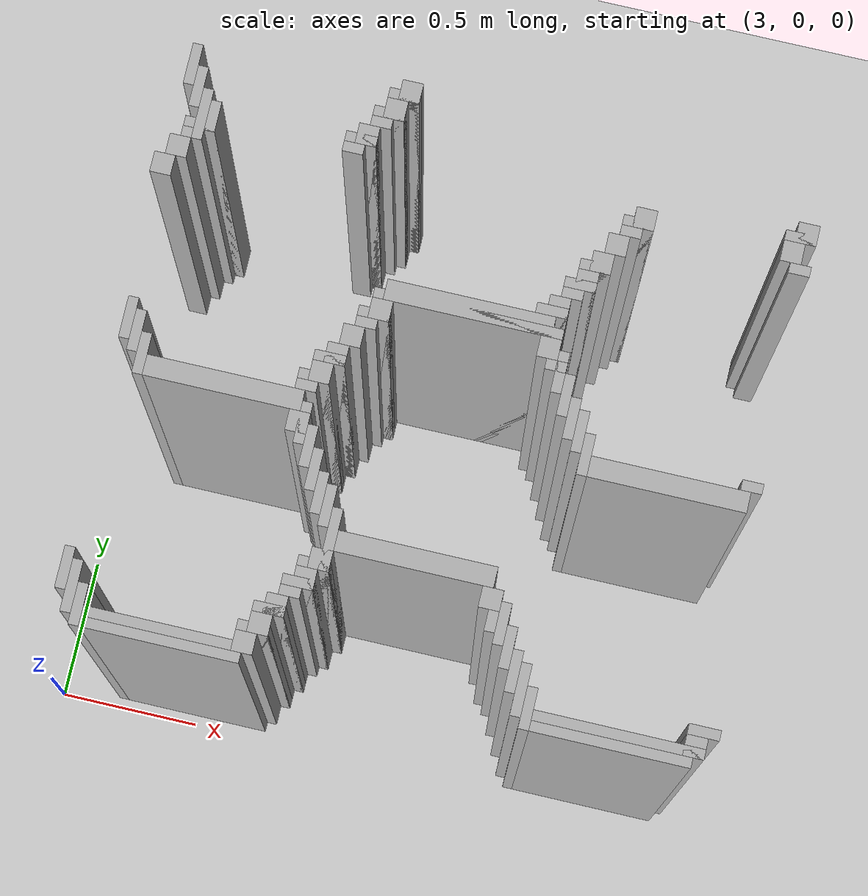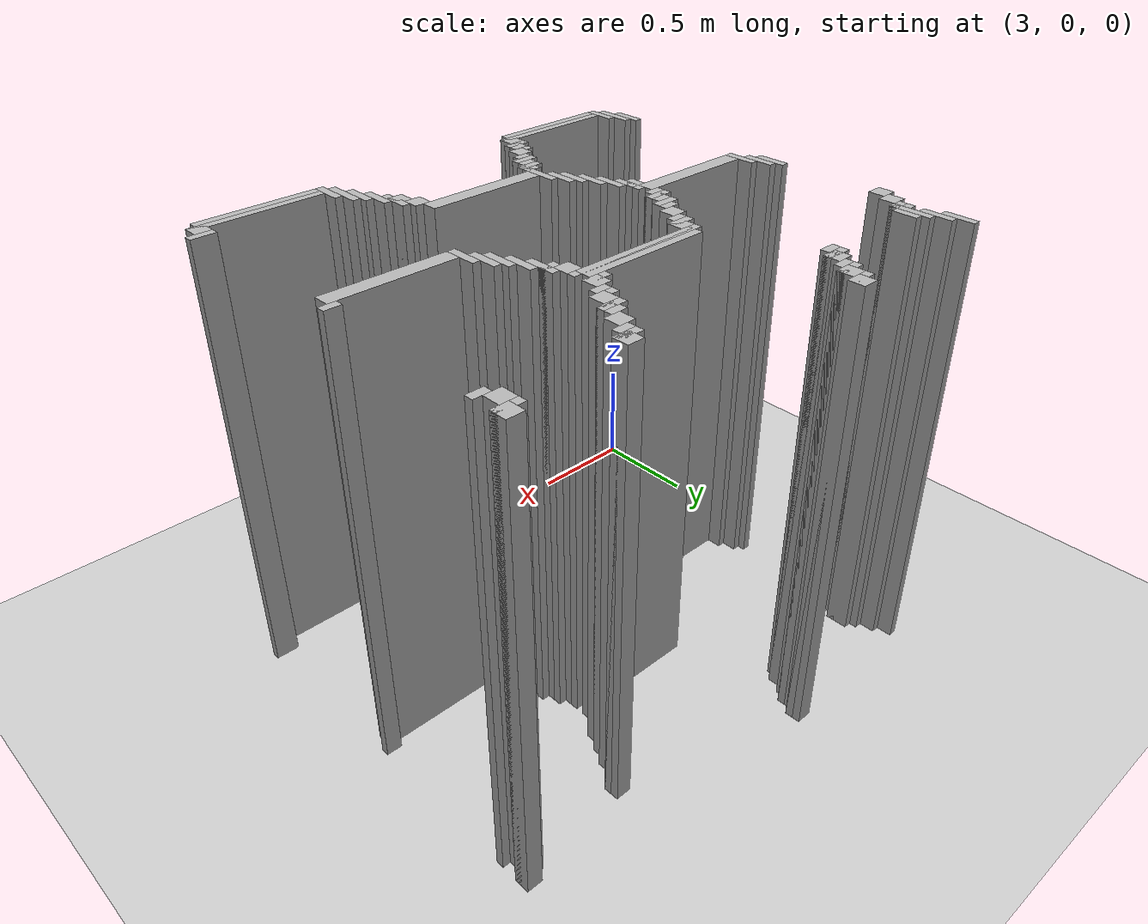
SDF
<sdf version="1.6">
 <world name="slam_world">
  <model name="ground_plane">
   <static>true</static>
   <link name="link">
    <collision name="collision">
     <geometry><plane><normal>0 0 1</normal><size>100 100</size></plane></geometry>
    </collision>
    <visual name="visual">
     <geometry><plane><normal>0 0 1</normal><size>100 100</size></plane></geometry>
     <material>
      <ambient>0.8 0.8 0.8 1</ambient>
      <diffuse>0.8 0.8 0.8 1</diffuse>
      <specular>0.8 0.8 0.8 1</specular>
     </material>
    </visual>
   </link>
  </model>
  <model name="wall_5062">
   <static>true</static>
   <pose>3.863109048723898 1.9837587006960555 1.0 0 0 0</pose>
   <link name="link">
    <collision name="collision">
     <geometry><box><size>0.06960556844547564 0.06960556844547564 2.0</size></box></geometry>
    </collision>
    <visual name="visual">
     <geometry><box><size>0.06960556844547564 0.06960556844547564 2.0</size></box></geometry>
     <material><ambient>0.5 0.5 0.5 1</ambient><diffuse>0.7 0.7 0.7 1</diffuse></material>
    </visual>
   </link>
  </model>
  <model name="wall_5074">
   <static>true</static>
   <pose>3.1496519721577725 1.91415313225058 1.0 0 0 0</pose>
   <link name="link">
    <collision name="collision">
     <geometry><box><size>0.03480278422273782 0.13921113689095127 2.0</size></box></geometry>
    </collision>
    <visual name="visual">
     <geometry><box><size>0.03480278422273782 0.13921113689095127 2.0</size></box></geometry>
     <material><ambient>0.5 0.5 0.5 1</ambient><diffuse>0.7 0.7 0.7 1</diffuse></material>
    </visual>
   </link>
  </model>
  <model name="wall_5075">
   <static>true</static>
   <pose>3.845707656612529 1.9663573085846866 1.0 0 0 0</pose>
   <link name="link">
    <collision name="collision">
     <geometry><box><size>0.10440835266821345 0.03480278422273782 2.0</size></box></geometry>
    </collision>
    <visual name="visual">
     <geometry><box><size>0.10440835266821345 0.03480278422273782 2.0</size></box></geometry>
     <material><ambient>0.5 0.5 0.5 1</ambient><diffuse>0.7 0.7 0.7 1</diffuse></material>
    </visual>
   </link>
  </model>
  <model name="wall_5086">
   <static>true</static>
   <pose>3.82830626450116 1.91415313225058 1.0 0 0 0</pose>
   <link name="link">
    <collision name="collision">
     <geometry><box><size>0.06960556844547564 0.06960556844547564 2.0</size></box></geometry>
    </collision>
    <visual name="visual">
     <geometry><box><size>0.06960556844547564 0.06960556844547564 2.0</size></box></geometry>
     <material><ambient>0.5 0.5 0.5 1</ambient><diffuse>0.7 0.7 0.7 1</diffuse></material>
    </visual>
   </link>
  </model>
  <model name="wall_5097">
   <static>true</static>
   <pose>3.1844547563805103 1.8445475638051043 1.0 0 0 0</pose>
   <link name="link">
    <collision name="collision">
     <geometry><box><size>0.03480278422273782 0.13921113689095127 2.0</size></box></geometry>
    </collision>
    <visual name="visual">
     <geometry><box><size>0.03480278422273782 0.13921113689095127 2.0</size></box></geometry>
     <material><ambient>0.5 0.5 0.5 1</ambient><diffuse>0.7 0.7 0.7 1</diffuse></material>
    </visual>
   </link>
  </model>
  <model name="wall_5098">
   <static>true</static>
   <pose>3.810904872389791 1.896751740139211 1.0 0 0 0</pose>
   <link name="link">
    <collision name="collision">
     <geometry><box><size>0.10440835266821345 0.03480278422273782 2.0</size></box></geometry>
    </collision>
    <visual name="visual">
     <geometry><box><size>0.10440835266821345 0.03480278422273782 2.0</size></box></geometry>
     <material><ambient>0.5 0.5 0.5 1</ambient><diffuse>0.7 0.7 0.7 1</diffuse></material>
    </visual>
   </link>
  </model>
  <model name="wall_5108">
   <static>true</static>
   <pose>3.793503480278422 1.8619489559164732 1.0 0 0 0</pose>
   <link name="link">
    <collision name="collision">
     <geometry><box><size>0.06960556844547564 0.03480278422273782 2.0</size></box></geometry>
    </collision>
    <visual name="visual">
     <geometry><box><size>0.06960556844547564 0.03480278422273782 2.0</size></box></geometry>
     <material><ambient>0.5 0.5 0.5 1</ambient><diffuse>0.7 0.7 0.7 1</diffuse></material>
    </visual>
   </link>
  </model>
  <model name="wall_5116">
   <static>true</static>
   <pose>3.219257540603248 1.75754060324826 1.0 0 0 0</pose>
   <link name="link">
    <collision name="collision">
     <geometry><box><size>0.03480278422273782 0.17401392111368907 2.0</size></box></geometry>
    </collision>
    <visual name="visual">
     <geometry><box><size>0.03480278422273782 0.17401392111368907 2.0</size></box></geometry>
     <material><ambient>0.5 0.5 0.5 1</ambient><diffuse>0.7 0.7 0.7 1</diffuse></material>
    </visual>
   </link>
  </model>
  <model name="wall_5117">
   <static>true</static>
   <pose>3.7587006960556844 1.8097447795823665 1.0 0 0 0</pose>
   <link name="link">
    <collision name="collision">
     <geometry><box><size>0.06960556844547564 0.06960556844547564 2.0</size></box></geometry>
    </collision>
    <visual name="visual">
     <geometry><box><size>0.06960556844547564 0.06960556844547564 2.0</size></box></geometry>
     <material><ambient>0.5 0.5 0.5 1</ambient><diffuse>0.7 0.7 0.7 1</diffuse></material>
    </visual>
   </link>
  </model>
  <model name="wall_5118">
   <static>true</static>
   <pose>5.220417633410673 1.8097447795823665 1.0 0 0 0</pose>
   <link name="link">
    <collision name="collision">
     <geometry><box><size>0.06960556844547564 0.06960556844547564 2.0</size></box></geometry>
    </collision>
    <visual name="visual">
     <geometry><box><size>0.06960556844547564 0.06960556844547564 2.0</size></box></geometry>
     <material><ambient>0.5 0.5 0.5 1</ambient><diffuse>0.7 0.7 0.7 1</diffuse></material>
    </visual>
   </link>
  </model>
  <model name="wall_5129">
   <static>true</static>
   <pose>3.254060324825986 1.75754060324826 1.0 0 0 0</pose>
   <link name="link">
    <collision name="collision">
     <geometry><box><size>0.03480278422273782 0.10440835266821345 2.0</size></box></geometry>
    </collision>
    <visual name="visual">
     <geometry><box><size>0.03480278422273782 0.10440835266821345 2.0</size></box></geometry>
     <material><ambient>0.5 0.5 0.5 1</ambient><diffuse>0.7 0.7 0.7 1</diffuse></material>
    </visual>
   </link>
  </model>
  <model name="wall_5130">
   <static>true</static>
   <pose>3.741299303944315 1.7923433874709975 1.0 0 0 0</pose>
   <link name="link">
    <collision name="collision">
     <geometry><box><size>0.10440835266821345 0.03480278422273782 2.0</size></box></geometry>
    </collision>
    <visual name="visual">
     <geometry><box><size>0.10440835266821345 0.03480278422273782 2.0</size></box></geometry>
     <material><ambient>0.5 0.5 0.5 1</ambient><diffuse>0.7 0.7 0.7 1</diffuse></material>
    </visual>
   </link>
  </model>
  <model name="wall_5131">
   <static>true</static>
   <pose>5.203016241299304 1.7923433874709975 1.0 0 0 0</pose>
   <link name="link">
    <collision name="collision">
     <geometry><box><size>0.10440835266821345 0.03480278422273782 2.0</size></box></geometry>
    </collision>
    <visual name="visual">
     <geometry><box><size>0.10440835266821345 0.03480278422273782 2.0</size></box></geometry>
     <material><ambient>0.5 0.5 0.5 1</ambient><diffuse>0.7 0.7 0.7 1</diffuse></material>
    </visual>
   </link>
  </model>
  <model name="wall_5140">
   <static>true</static>
   <pose>3.7238979118329465 1.75754060324826 1.0 0 0 0</pose>
   <link name="link">
    <collision name="collision">
     <geometry><box><size>0.06960556844547564 0.03480278422273782 2.0</size></box></geometry>
    </collision>
    <visual name="visual">
     <geometry><box><size>0.06960556844547564 0.03480278422273782 2.0</size></box></geometry>
     <material><ambient>0.5 0.5 0.5 1</ambient><diffuse>0.7 0.7 0.7 1</diffuse></material>
    </visual>
   </link>
  </model>
  <model name="wall_5141">
   <static>true</static>
   <pose>4.698375870069605 1.740139211136891 1.0 0 0 0</pose>
   <link name="link">
    <collision name="collision">
     <geometry><box><size>0.06960556844547564 0.06960556844547564 2.0</size></box></geometry>
    </collision>
    <visual name="visual">
     <geometry><box><size>0.06960556844547564 0.06960556844547564 2.0</size></box></geometry>
     <material><ambient>0.5 0.5 0.5 1</ambient><diffuse>0.7 0.7 0.7 1</diffuse></material>
    </visual>
   </link>
  </model>
  <model name="wall_5142">
   <static>true</static>
   <pose>5.185614849187935 1.740139211136891 1.0 0 0 0</pose>
   <link name="link">
    <collision name="collision">
     <geometry><box><size>0.06960556844547564 0.06960556844547564 2.0</size></box></geometry>
    </collision>
    <visual name="visual">
     <geometry><box><size>0.06960556844547564 0.06960556844547564 2.0</size></box></geometry>
     <material><ambient>0.5 0.5 0.5 1</ambient><diffuse>0.7 0.7 0.7 1</diffuse></material>
    </visual>
   </link>
  </model>
  <model name="wall_5151">
   <static>true</static>
   <pose>3.219257540603248 1.722737819025522 1.0 0 0 0</pose>
   <link name="link">
    <collision name="collision">
     <geometry><box><size>0.10440835266821345 0.03480278422273782 2.0</size></box></geometry>
    </collision>
    <visual name="visual">
     <geometry><box><size>0.10440835266821345 0.03480278422273782 2.0</size></box></geometry>
     <material><ambient>0.5 0.5 0.5 1</ambient><diffuse>0.7 0.7 0.7 1</diffuse></material>
    </visual>
   </link>
  </model>
  <model name="wall_5152">
   <static>true</static>
   <pose>4.6809744779582365 1.722737819025522 1.0 0 0 0</pose>
   <link name="link">
    <collision name="collision">
     <geometry><box><size>0.10440835266821345 0.03480278422273782 2.0</size></box></geometry>
    </collision>
    <visual name="visual">
     <geometry><box><size>0.10440835266821345 0.03480278422273782 2.0</size></box></geometry>
     <material><ambient>0.5 0.5 0.5 1</ambient><diffuse>0.7 0.7 0.7 1</diffuse></material>
    </visual>
   </link>
  </model>
  <model name="wall_5165">
   <static>true</static>
   <pose>3.201856148491879 1.6879350348027842 1.0 0 0 0</pose>
   <link name="link">
    <collision name="collision">
     <geometry><box><size>0.06960556844547564 0.03480278422273782 2.0</size></box></geometry>
    </collision>
    <visual name="visual">
     <geometry><box><size>0.06960556844547564 0.03480278422273782 2.0</size></box></geometry>
     <material><ambient>0.5 0.5 0.5 1</ambient><diffuse>0.7 0.7 0.7 1</diffuse></material>
    </visual>
   </link>
  </model>
  <model name="wall_5166">
   <static>true</static>
   <pose>4.663573085846868 1.6879350348027842 1.0 0 0 0</pose>
   <link name="link">
    <collision name="collision">
     <geometry><box><size>0.06960556844547564 0.03480278422273782 2.0</size></box></geometry>
    </collision>
    <visual name="visual">
     <geometry><box><size>0.06960556844547564 0.03480278422273782 2.0</size></box></geometry>
     <material><ambient>0.5 0.5 0.5 1</ambient><diffuse>0.7 0.7 0.7 1</diffuse></material>
    </visual>
   </link>
  </model>
  <model name="wall_5167">
   <static>true</static>
   <pose>5.220417633410673 1.6879350348027842 1.0 0 0 0</pose>
   <link name="link">
    <collision name="collision">
     <geometry><box><size>0.06960556844547564 0.03480278422273782 2.0</size></box></geometry>
    </collision>
    <visual name="visual">
     <geometry><box><size>0.06960556844547564 0.03480278422273782 2.0</size></box></geometry>
     <material><ambient>0.5 0.5 0.5 1</ambient><diffuse>0.7 0.7 0.7 1</diffuse></material>
    </visual>
   </link>
  </model>
  <model name="wall_5181">
   <static>true</static>
   <pose>3.167053364269141 1.6357308584686774 1.0 0 0 0</pose>
   <link name="link">
    <collision name="collision">
     <geometry><box><size>0.06960556844547564 0.06960556844547564 2.0</size></box></geometry>
    </collision>
    <visual name="visual">
     <geometry><box><size>0.06960556844547564 0.06960556844547564 2.0</size></box></geometry>
     <material><ambient>0.5 0.5 0.5 1</ambient><diffuse>0.7 0.7 0.7 1</diffuse></material>
    </visual>
   </link>
  </model>
  <model name="wall_5182">
   <static>true</static>
   <pose>4.6287703016241295 1.6357308584686774 1.0 0 0 0</pose>
   <link name="link">
    <collision name="collision">
     <geometry><box><size>0.06960556844547564 0.06960556844547564 2.0</size></box></geometry>
    </collision>
    <visual name="visual">
     <geometry><box><size>0.06960556844547564 0.06960556844547564 2.0</size></box></geometry>
     <material><ambient>0.5 0.5 0.5 1</ambient><diffuse>0.7 0.7 0.7 1</diffuse></material>
    </visual>
   </link>
  </model>
  <model name="wall_5197">
   <static>true</static>
   <pose>3.1322505800464038 1.5661252900232019 1.0 0 0 0</pose>
   <link name="link">
    <collision name="collision">
     <geometry><box><size>0.06960556844547564 0.06960556844547564 2.0</size></box></geometry>
    </collision>
    <visual name="visual">
     <geometry><box><size>0.06960556844547564 0.06960556844547564 2.0</size></box></geometry>
     <material><ambient>0.5 0.5 0.5 1</ambient><diffuse>0.7 0.7 0.7 1</diffuse></material>
    </visual>
   </link>
  </model>
  <model name="wall_5198">
   <static>true</static>
   <pose>4.593967517401392 1.5661252900232019 1.0 0 0 0</pose>
   <link name="link">
    <collision name="collision">
     <geometry><box><size>0.06960556844547564 0.06960556844547564 2.0</size></box></geometry>
    </collision>
    <visual name="visual">
     <geometry><box><size>0.06960556844547564 0.06960556844547564 2.0</size></box></geometry>
     <material><ambient>0.5 0.5 0.5 1</ambient><diffuse>0.7 0.7 0.7 1</diffuse></material>
    </visual>
   </link>
  </model>
  <model name="wall_5214">
   <static>true</static>
   <pose>4.576566125290023 1.548723897911833 1.0 0 0 0</pose>
   <link name="link">
    <collision name="collision">
     <geometry><box><size>0.10440835266821345 0.03480278422273782 2.0</size></box></geometry>
    </collision>
    <visual name="visual">
     <geometry><box><size>0.10440835266821345 0.03480278422273782 2.0</size></box></geometry>
     <material><ambient>0.5 0.5 0.5 1</ambient><diffuse>0.7 0.7 0.7 1</diffuse></material>
    </visual>
   </link>
  </model>
  <model name="wall_5230">
   <static>true</static>
   <pose>4.559164733178654 1.4965197215777262 1.0 0 0 0</pose>
   <link name="link">
    <collision name="collision">
     <geometry><box><size>0.06960556844547564 0.06960556844547564 2.0</size></box></geometry>
    </collision>
    <visual name="visual">
     <geometry><box><size>0.06960556844547564 0.06960556844547564 2.0</size></box></geometry>
     <material><ambient>0.5 0.5 0.5 1</ambient><diffuse>0.7 0.7 0.7 1</diffuse></material>
    </visual>
   </link>
  </model>
  <model name="wall_5243">
   <static>true</static>
   <pose>4.541763341067285 1.4791183294663572 1.0 0 0 0</pose>
   <link name="link">
    <collision name="collision">
     <geometry><box><size>0.10440835266821345 0.03480278422273782 2.0</size></box></geometry>
    </collision>
    <visual name="visual">
     <geometry><box><size>0.10440835266821345 0.03480278422273782 2.0</size></box></geometry>
     <material><ambient>0.5 0.5 0.5 1</ambient><diffuse>0.7 0.7 0.7 1</diffuse></material>
    </visual>
   </link>
  </model>
  <model name="wall_5258">
   <static>true</static>
   <pose>4.524361948955916 1.4443155452436194 1.0 0 0 0</pose>
   <link name="link">
    <collision name="collision">
     <geometry><box><size>0.06960556844547564 0.03480278422273782 2.0</size></box></geometry>
    </collision>
    <visual name="visual">
     <geometry><box><size>0.06960556844547564 0.03480278422273782 2.0</size></box></geometry>
     <material><ambient>0.5 0.5 0.5 1</ambient><diffuse>0.7 0.7 0.7 1</diffuse></material>
    </visual>
   </link>
  </model>
  <model name="wall_5269">
   <static>true</static>
   <pose>4.489559164733178 1.3921113689095126 1.0 0 0 0</pose>
   <link name="link">
    <collision name="collision">
     <geometry><box><size>0.06960556844547564 0.06960556844547564 2.0</size></box></geometry>
    </collision>
    <visual name="visual">
     <geometry><box><size>0.06960556844547564 0.06960556844547564 2.0</size></box></geometry>
     <material><ambient>0.5 0.5 0.5 1</ambient><diffuse>0.7 0.7 0.7 1</diffuse></material>
    </visual>
   </link>
  </model>
  <model name="wall_5283">
   <static>true</static>
   <pose>4.472157772621809 1.3747099767981439 1.0 0 0 0</pose>
   <link name="link">
    <collision name="collision">
     <geometry><box><size>0.10440835266821345 0.03480278422273782 2.0</size></box></geometry>
    </collision>
    <visual name="visual">
     <geometry><box><size>0.10440835266821345 0.03480278422273782 2.0</size></box></geometry>
     <material><ambient>0.5 0.5 0.5 1</ambient><diffuse>0.7 0.7 0.7 1</diffuse></material>
    </visual>
   </link>
  </model>
  <model name="wall_5297">
   <static>true</static>
   <pose>4.211136890951276 1.322505800464037 1.0 0 0 0</pose>
   <link name="link">
    <collision name="collision">
     <geometry><box><size>0.5568445475638051 0.06960556844547564 2.0</size></box></geometry>
    </collision>
    <visual name="visual">
     <geometry><box><size>0.5568445475638051 0.06960556844547564 2.0</size></box></geometry>
     <material><ambient>0.5 0.5 0.5 1</ambient><diffuse>0.7 0.7 0.7 1</diffuse></material>
    </visual>
   </link>
  </model>
  <model name="wall_5309">
   <static>true</static>
   <pose>4.211136890951276 1.3051044083526682 1.0 0 0 0</pose>
   <link name="link">
    <collision name="collision">
     <geometry><box><size>0.6264501160092807 0.03480278422273782 2.0</size></box></geometry>
    </collision>
    <visual name="visual">
     <geometry><box><size>0.6264501160092807 0.03480278422273782 2.0</size></box></geometry>
     <material><ambient>0.5 0.5 0.5 1</ambient><diffuse>0.7 0.7 0.7 1</diffuse></material>
    </visual>
   </link>
  </model>
  <model name="wall_5320">
   <static>true</static>
   <pose>3.932714617169373 1.2529002320185614 1.0 0 0 0</pose>
   <link name="link">
    <collision name="collision">
     <geometry><box><size>0.06960556844547564 0.06960556844547564 2.0</size></box></geometry>
    </collision>
    <visual name="visual">
     <geometry><box><size>0.06960556844547564 0.06960556844547564 2.0</size></box></geometry>
     <material><ambient>0.5 0.5 0.5 1</ambient><diffuse>0.7 0.7 0.7 1</diffuse></material>
    </visual>
   </link>
  </model>
  <model name="wall_5321">
   <static>true</static>
   <pose>4.489559164733178 1.2529002320185614 1.0 0 0 0</pose>
   <link name="link">
    <collision name="collision">
     <geometry><box><size>0.06960556844547564 0.06960556844547564 2.0</size></box></geometry>
    </collision>
    <visual name="visual">
     <geometry><box><size>0.06960556844547564 0.06960556844547564 2.0</size></box></geometry>
     <material><ambient>0.5 0.5 0.5 1</ambient><diffuse>0.7 0.7 0.7 1</diffuse></material>
    </visual>
   </link>
  </model>
  <model name="wall_5334">
   <static>true</static>
   <pose>3.9153132250580045 1.2354988399071924 1.0 0 0 0</pose>
   <link name="link">
    <collision name="collision">
     <geometry><box><size>0.10440835266821345 0.03480278422273782 2.0</size></box></geometry>
    </collision>
    <visual name="visual">
     <geometry><box><size>0.10440835266821345 0.03480278422273782 2.0</size></box></geometry>
     <material><ambient>0.5 0.5 0.5 1</ambient><diffuse>0.7 0.7 0.7 1</diffuse></material>
    </visual>
   </link>
  </model>
  <model name="wall_5335">
   <static>true</static>
   <pose>4.541763341067285 1.1832946635730859 1.0 0 0 0</pose>
   <link name="link">
    <collision name="collision">
     <geometry><box><size>0.03480278422273782 0.13921113689095127 2.0</size></box></geometry>
    </collision>
    <visual name="visual">
     <geometry><box><size>0.03480278422273782 0.13921113689095127 2.0</size></box></geometry>
     <material><ambient>0.5 0.5 0.5 1</ambient><diffuse>0.7 0.7 0.7 1</diffuse></material>
    </visual>
   </link>
  </model>
  <model name="wall_5345">
   <static>true</static>
   <pose>3.897911832946636 1.2006960556844548 1.0 0 0 0</pose>
   <link name="link">
    <collision name="collision">
     <geometry><box><size>0.06960556844547564 0.03480278422273782 2.0</size></box></geometry>
    </collision>
    <visual name="visual">
     <geometry><box><size>0.06960556844547564 0.03480278422273782 2.0</size></box></geometry>
     <material><ambient>0.5 0.5 0.5 1</ambient><diffuse>0.7 0.7 0.7 1</diffuse></material>
    </visual>
   </link>
  </model>
  <model name="wall_5346">
   <static>true</static>
   <pose>4.524361948955916 1.2006960556844548 1.0 0 0 0</pose>
   <link name="link">
    <collision name="collision">
     <geometry><box><size>0.06960556844547564 0.03480278422273782 2.0</size></box></geometry>
    </collision>
    <visual name="visual">
     <geometry><box><size>0.06960556844547564 0.03480278422273782 2.0</size></box></geometry>
     <material><ambient>0.5 0.5 0.5 1</ambient><diffuse>0.7 0.7 0.7 1</diffuse></material>
    </visual>
   </link>
  </model>
  <model name="wall_5357">
   <static>true</static>
   <pose>3.863109048723898 1.148491879350348 1.0 0 0 0</pose>
   <link name="link">
    <collision name="collision">
     <geometry><box><size>0.06960556844547564 0.06960556844547564 2.0</size></box></geometry>
    </collision>
    <visual name="visual">
     <geometry><box><size>0.06960556844547564 0.06960556844547564 2.0</size></box></geometry>
     <material><ambient>0.5 0.5 0.5 1</ambient><diffuse>0.7 0.7 0.7 1</diffuse></material>
    </visual>
   </link>
  </model>
  <model name="wall_5358">
   <static>true</static>
   <pose>4.576566125290023 1.1136890951276102 1.0 0 0 0</pose>
   <link name="link">
    <collision name="collision">
     <geometry><box><size>0.03480278422273782 0.13921113689095127 2.0</size></box></geometry>
    </collision>
    <visual name="visual">
     <geometry><box><size>0.03480278422273782 0.13921113689095127 2.0</size></box></geometry>
     <material><ambient>0.5 0.5 0.5 1</ambient><diffuse>0.7 0.7 0.7 1</diffuse></material>
    </visual>
   </link>
  </model>
  <model name="wall_5370">
   <static>true</static>
   <pose>3.1496519721577725 1.0440835266821344 1.0 0 0 0</pose>
   <link name="link">
    <collision name="collision">
     <geometry><box><size>0.03480278422273782 0.13921113689095127 2.0</size></box></geometry>
    </collision>
    <visual name="visual">
     <geometry><box><size>0.03480278422273782 0.13921113689095127 2.0</size></box></geometry>
     <material><ambient>0.5 0.5 0.5 1</ambient><diffuse>0.7 0.7 0.7 1</diffuse></material>
    </visual>
   </link>
  </model>
  <model name="wall_5371">
   <static>true</static>
   <pose>3.82830626450116 1.0788863109048723 1.0 0 0 0</pose>
   <link name="link">
    <collision name="collision">
     <geometry><box><size>0.06960556844547564 0.06960556844547564 2.0</size></box></geometry>
    </collision>
    <visual name="visual">
     <geometry><box><size>0.06960556844547564 0.06960556844547564 2.0</size></box></geometry>
     <material><ambient>0.5 0.5 0.5 1</ambient><diffuse>0.7 0.7 0.7 1</diffuse></material>
    </visual>
   </link>
  </model>
  <model name="wall_5372">
   <static>true</static>
   <pose>4.611368909512761 1.0440835266821344 1.0 0 0 0</pose>
   <link name="link">
    <collision name="collision">
     <geometry><box><size>0.03480278422273782 0.13921113689095127 2.0</size></box></geometry>
    </collision>
    <visual name="visual">
     <geometry><box><size>0.03480278422273782 0.13921113689095127 2.0</size></box></geometry>
     <material><ambient>0.5 0.5 0.5 1</ambient><diffuse>0.7 0.7 0.7 1</diffuse></material>
    </visual>
   </link>
  </model>
  <model name="wall_5384">
   <static>true</static>
   <pose>3.1844547563805103 1.0092807424593968 1.0 0 0 0</pose>
   <link name="link">
    <collision name="collision">
     <geometry><box><size>0.03480278422273782 0.13921113689095127 2.0</size></box></geometry>
    </collision>
    <visual name="visual">
     <geometry><box><size>0.03480278422273782 0.13921113689095127 2.0</size></box></geometry>
     <material><ambient>0.5 0.5 0.5 1</ambient><diffuse>0.7 0.7 0.7 1</diffuse></material>
    </visual>
   </link>
  </model>
  <model name="wall_5385">
   <static>true</static>
   <pose>3.810904872389791 1.0614849187935034 1.0 0 0 0</pose>
   <link name="link">
    <collision name="collision">
     <geometry><box><size>0.10440835266821345 0.03480278422273782 2.0</size></box></geometry>
    </collision>
    <visual name="visual">
     <geometry><box><size>0.10440835266821345 0.03480278422273782 2.0</size></box></geometry>
     <material><ambient>0.5 0.5 0.5 1</ambient><diffuse>0.7 0.7 0.7 1</diffuse></material>
    </visual>
   </link>
  </model>
  <model name="wall_5386">
   <static>true</static>
   <pose>4.646171693735498 1.0092807424593968 1.0 0 0 0</pose>
   <link name="link">
    <collision name="collision">
     <geometry><box><size>0.03480278422273782 0.13921113689095127 2.0</size></box></geometry>
    </collision>
    <visual name="visual">
     <geometry><box><size>0.03480278422273782 0.13921113689095127 2.0</size></box></geometry>
     <material><ambient>0.5 0.5 0.5 1</ambient><diffuse>0.7 0.7 0.7 1</diffuse></material>
    </visual>
   </link>
  </model>
  <model name="wall_5396">
   <static>true</static>
   <pose>3.793503480278422 1.0092807424593968 1.0 0 0 0</pose>
   <link name="link">
    <collision name="collision">
     <geometry><box><size>0.06960556844547564 0.06960556844547564 2.0</size></box></geometry>
    </collision>
    <visual name="visual">
     <geometry><box><size>0.06960556844547564 0.06960556844547564 2.0</size></box></geometry>
     <material><ambient>0.5 0.5 0.5 1</ambient><diffuse>0.7 0.7 0.7 1</diffuse></material>
    </visual>
   </link>
  </model>
  <model name="wall_5404">
   <static>true</static>
   <pose>3.219257540603248 0.9396751740139211 1.0 0 0 0</pose>
   <link name="link">
    <collision name="collision">
     <geometry><box><size>0.03480278422273782 0.13921113689095127 2.0</size></box></geometry>
    </collision>
    <visual name="visual">
     <geometry><box><size>0.03480278422273782 0.13921113689095127 2.0</size></box></geometry>
     <material><ambient>0.5 0.5 0.5 1</ambient><diffuse>0.7 0.7 0.7 1</diffuse></material>
    </visual>
   </link>
  </model>
  <model name="wall_5405">
   <static>true</static>
   <pose>3.776102088167053 0.9918793503480278 1.0 0 0 0</pose>
   <link name="link">
    <collision name="collision">
     <geometry><box><size>0.10440835266821345 0.03480278422273782 2.0</size></box></geometry>
    </collision>
    <visual name="visual">
     <geometry><box><size>0.10440835266821345 0.03480278422273782 2.0</size></box></geometry>
     <material><ambient>0.5 0.5 0.5 1</ambient><diffuse>0.7 0.7 0.7 1</diffuse></material>
    </visual>
   </link>
  </model>
  <model name="wall_5406">
   <static>true</static>
   <pose>4.6809744779582365 0.9396751740139211 1.0 0 0 0</pose>
   <link name="link">
    <collision name="collision">
     <geometry><box><size>0.03480278422273782 0.13921113689095127 2.0</size></box></geometry>
    </collision>
    <visual name="visual">
     <geometry><box><size>0.03480278422273782 0.13921113689095127 2.0</size></box></geometry>
     <material><ambient>0.5 0.5 0.5 1</ambient><diffuse>0.7 0.7 0.7 1</diffuse></material>
    </visual>
   </link>
  </model>
  <model name="wall_5416">
   <static>true</static>
   <pose>3.7587006960556844 0.95707656612529 1.0 0 0 0</pose>
   <link name="link">
    <collision name="collision">
     <geometry><box><size>0.06960556844547564 0.03480278422273782 2.0</size></box></geometry>
    </collision>
    <visual name="visual">
     <geometry><box><size>0.06960556844547564 0.03480278422273782 2.0</size></box></geometry>
     <material><ambient>0.5 0.5 0.5 1</ambient><diffuse>0.7 0.7 0.7 1</diffuse></material>
    </visual>
   </link>
  </model>
  <model name="wall_5417">
   <static>true</static>
   <pose>5.220417633410673 0.95707656612529 1.0 0 0 0</pose>
   <link name="link">
    <collision name="collision">
     <geometry><box><size>0.06960556844547564 0.03480278422273782 2.0</size></box></geometry>
    </collision>
    <visual name="visual">
     <geometry><box><size>0.06960556844547564 0.03480278422273782 2.0</size></box></geometry>
     <material><ambient>0.5 0.5 0.5 1</ambient><diffuse>0.7 0.7 0.7 1</diffuse></material>
    </visual>
   </link>
  </model>
  <model name="wall_5424">
   <static>true</static>
   <pose>3.4976798143851506 0.9048723897911832 1.0 0 0 0</pose>
   <link name="link">
    <collision name="collision">
     <geometry><box><size>0.5220417633410672 0.06960556844547564 2.0</size></box></geometry>
    </collision>
    <visual name="visual">
     <geometry><box><size>0.5220417633410672 0.06960556844547564 2.0</size></box></geometry>
     <material><ambient>0.5 0.5 0.5 1</ambient><diffuse>0.7 0.7 0.7 1</diffuse></material>
    </visual>
   </link>
  </model>
  <model name="wall_5425">
   <static>true</static>
   <pose>4.959396751740139 0.9048723897911832 1.0 0 0 0</pose>
   <link name="link">
    <collision name="collision">
     <geometry><box><size>0.5220417633410672 0.06960556844547564 2.0</size></box></geometry>
    </collision>
    <visual name="visual">
     <geometry><box><size>0.5220417633410672 0.06960556844547564 2.0</size></box></geometry>
     <material><ambient>0.5 0.5 0.5 1</ambient><diffuse>0.7 0.7 0.7 1</diffuse></material>
    </visual>
   </link>
  </model>
  <model name="wall_5439">
   <static>true</static>
   <pose>3.776102088167053 0.8352668213457076 1.0 0 0 0</pose>
   <link name="link">
    <collision name="collision">
     <geometry><box><size>0.03480278422273782 0.13921113689095127 2.0</size></box></geometry>
    </collision>
    <visual name="visual">
     <geometry><box><size>0.03480278422273782 0.13921113689095127 2.0</size></box></geometry>
     <material><ambient>0.5 0.5 0.5 1</ambient><diffuse>0.7 0.7 0.7 1</diffuse></material>
    </visual>
   </link>
  </model>
  <model name="wall_5449">
   <static>true</static>
   <pose>3.7587006960556844 0.8352668213457076 1.0 0 0 0</pose>
   <link name="link">
    <collision name="collision">
     <geometry><box><size>0.06960556844547564 0.06960556844547564 2.0</size></box></geometry>
    </collision>
    <visual name="visual">
     <geometry><box><size>0.06960556844547564 0.06960556844547564 2.0</size></box></geometry>
     <material><ambient>0.5 0.5 0.5 1</ambient><diffuse>0.7 0.7 0.7 1</diffuse></material>
    </visual>
   </link>
  </model>
  <model name="wall_5459">
   <static>true</static>
   <pose>3.810904872389791 0.765661252900232 1.0 0 0 0</pose>
   <link name="link">
    <collision name="collision">
     <geometry><box><size>0.03480278422273782 0.13921113689095127 2.0</size></box></geometry>
    </collision>
    <visual name="visual">
     <geometry><box><size>0.03480278422273782 0.13921113689095127 2.0</size></box></geometry>
     <material><ambient>0.5 0.5 0.5 1</ambient><diffuse>0.7 0.7 0.7 1</diffuse></material>
    </visual>
   </link>
  </model>
  <model name="wall_5475">
   <static>true</static>
   <pose>3.845707656612529 0.6960556844547563 1.0 0 0 0</pose>
   <link name="link">
    <collision name="collision">
     <geometry><box><size>0.03480278422273782 0.13921113689095127 2.0</size></box></geometry>
    </collision>
    <visual name="visual">
     <geometry><box><size>0.03480278422273782 0.13921113689095127 2.0</size></box></geometry>
     <material><ambient>0.5 0.5 0.5 1</ambient><diffuse>0.7 0.7 0.7 1</diffuse></material>
    </visual>
   </link>
  </model>
  <model name="wall_5485">
   <static>true</static>
   <pose>3.8805104408352666 0.6264501160092807 1.0 0 0 0</pose>
   <link name="link">
    <collision name="collision">
     <geometry><box><size>0.03480278422273782 0.13921113689095127 2.0</size></box></geometry>
    </collision>
    <visual name="visual">
     <geometry><box><size>0.03480278422273782 0.13921113689095127 2.0</size></box></geometry>
     <material><ambient>0.5 0.5 0.5 1</ambient><diffuse>0.7 0.7 0.7 1</diffuse></material>
    </visual>
   </link>
  </model>
  <model name="wall_5495">
   <static>true</static>
   <pose>3.9153132250580045 0.5916473317865429 1.0 0 0 0</pose>
   <link name="link">
    <collision name="collision">
     <geometry><box><size>0.03480278422273782 0.13921113689095127 2.0</size></box></geometry>
    </collision>
    <visual name="visual">
     <geometry><box><size>0.03480278422273782 0.13921113689095127 2.0</size></box></geometry>
     <material><ambient>0.5 0.5 0.5 1</ambient><diffuse>0.7 0.7 0.7 1</diffuse></material>
    </visual>
   </link>
  </model>
  <model name="wall_5511">
   <static>true</static>
   <pose>3.9501160092807424 0.4872389791183295 1.0 0 0 0</pose>
   <link name="link">
    <collision name="collision">
     <geometry><box><size>0.03480278422273782 0.2088167053364269 2.0</size></box></geometry>
    </collision>
    <visual name="visual">
     <geometry><box><size>0.03480278422273782 0.2088167053364269 2.0</size></box></geometry>
     <material><ambient>0.5 0.5 0.5 1</ambient><diffuse>0.7 0.7 0.7 1</diffuse></material>
    </visual>
   </link>
  </model>
  <model name="wall_5528">
   <static>true</static>
   <pose>4.228538283062645 0.4872389791183295 1.0 0 0 0</pose>
   <link name="link">
    <collision name="collision">
     <geometry><box><size>0.5220417633410672 0.06960556844547564 2.0</size></box></geometry>
    </collision>
    <visual name="visual">
     <geometry><box><size>0.5220417633410672 0.06960556844547564 2.0</size></box></geometry>
     <material><ambient>0.5 0.5 0.5 1</ambient><diffuse>0.7 0.7 0.7 1</diffuse></material>
    </visual>
   </link>
  </model>
  <model name="wall_5541">
   <static>true</static>
   <pose>3.932714617169373 0.4176334106728538 1.0 0 0 0</pose>
   <link name="link">
    <collision name="collision">
     <geometry><box><size>0.06960556844547564 0.06960556844547564 2.0</size></box></geometry>
    </collision>
    <visual name="visual">
     <geometry><box><size>0.06960556844547564 0.06960556844547564 2.0</size></box></geometry>
     <material><ambient>0.5 0.5 0.5 1</ambient><diffuse>0.7 0.7 0.7 1</diffuse></material>
    </visual>
   </link>
  </model>
  <model name="wall_5542">
   <static>true</static>
   <pose>4.489559164733178 0.4176334106728538 1.0 0 0 0</pose>
   <link name="link">
    <collision name="collision">
     <geometry><box><size>0.06960556844547564 0.06960556844547564 2.0</size></box></geometry>
    </collision>
    <visual name="visual">
     <geometry><box><size>0.06960556844547564 0.06960556844547564 2.0</size></box></geometry>
     <material><ambient>0.5 0.5 0.5 1</ambient><diffuse>0.7 0.7 0.7 1</diffuse></material>
    </visual>
   </link>
  </model>
  <model name="wall_5561">
   <static>true</static>
   <pose>3.9153132250580045 0.4002320185614849 1.0 0 0 0</pose>
   <link name="link">
    <collision name="collision">
     <geometry><box><size>0.10440835266821345 0.03480278422273782 2.0</size></box></geometry>
    </collision>
    <visual name="visual">
     <geometry><box><size>0.10440835266821345 0.03480278422273782 2.0</size></box></geometry>
     <material><ambient>0.5 0.5 0.5 1</ambient><diffuse>0.7 0.7 0.7 1</diffuse></material>
    </visual>
   </link>
  </model>
  <model name="wall_5562">
   <static>true</static>
   <pose>4.541763341067285 0.34802784222737815 1.0 0 0 0</pose>
   <link name="link">
    <collision name="collision">
     <geometry><box><size>0.03480278422273782 0.13921113689095127 2.0</size></box></geometry>
    </collision>
    <visual name="visual">
     <geometry><box><size>0.03480278422273782 0.13921113689095127 2.0</size></box></geometry>
     <material><ambient>0.5 0.5 0.5 1</ambient><diffuse>0.7 0.7 0.7 1</diffuse></material>
    </visual>
   </link>
  </model>
  <model name="wall_5581">
   <static>true</static>
   <pose>3.897911832946636 0.34802784222737815 1.0 0 0 0</pose>
   <link name="link">
    <collision name="collision">
     <geometry><box><size>0.06960556844547564 0.06960556844547564 2.0</size></box></geometry>
    </collision>
    <visual name="visual">
     <geometry><box><size>0.06960556844547564 0.06960556844547564 2.0</size></box></geometry>
     <material><ambient>0.5 0.5 0.5 1</ambient><diffuse>0.7 0.7 0.7 1</diffuse></material>
    </visual>
   </link>
  </model>
  <model name="wall_5582">
   <static>true</static>
   <pose>4.524361948955916 0.34802784222737815 1.0 0 0 0</pose>
   <link name="link">
    <collision name="collision">
     <geometry><box><size>0.06960556844547564 0.06960556844547564 2.0</size></box></geometry>
    </collision>
    <visual name="visual">
     <geometry><box><size>0.06960556844547564 0.06960556844547564 2.0</size></box></geometry>
     <material><ambient>0.5 0.5 0.5 1</ambient><diffuse>0.7 0.7 0.7 1</diffuse></material>
    </visual>
   </link>
  </model>
  <model name="wall_5601">
   <static>true</static>
   <pose>3.8805104408352666 0.3306264501160093 1.0 0 0 0</pose>
   <link name="link">
    <collision name="collision">
     <geometry><box><size>0.10440835266821345 0.03480278422273782 2.0</size></box></geometry>
    </collision>
    <visual name="visual">
     <geometry><box><size>0.10440835266821345 0.03480278422273782 2.0</size></box></geometry>
     <material><ambient>0.5 0.5 0.5 1</ambient><diffuse>0.7 0.7 0.7 1</diffuse></material>
    </visual>
   </link>
  </model>
  <model name="wall_5602">
   <static>true</static>
   <pose>4.576566125290023 0.27842227378190254 1.0 0 0 0</pose>
   <link name="link">
    <collision name="collision">
     <geometry><box><size>0.03480278422273782 0.13921113689095127 2.0</size></box></geometry>
    </collision>
    <visual name="visual">
     <geometry><box><size>0.03480278422273782 0.13921113689095127 2.0</size></box></geometry>
     <material><ambient>0.5 0.5 0.5 1</ambient><diffuse>0.7 0.7 0.7 1</diffuse></material>
    </visual>
   </link>
  </model>
  <model name="wall_5618">
   <static>true</static>
   <pose>3.863109048723898 0.29582366589327147 1.0 0 0 0</pose>
   <link name="link">
    <collision name="collision">
     <geometry><box><size>0.06960556844547564 0.03480278422273782 2.0</size></box></geometry>
    </collision>
    <visual name="visual">
     <geometry><box><size>0.06960556844547564 0.03480278422273782 2.0</size></box></geometry>
     <material><ambient>0.5 0.5 0.5 1</ambient><diffuse>0.7 0.7 0.7 1</diffuse></material>
    </visual>
   </link>
  </model>
  <model name="wall_5630">
   <static>true</static>
   <pose>3.1496519721577725 0.2088167053364269 1.0 0 0 0</pose>
   <link name="link">
    <collision name="collision">
     <geometry><box><size>0.03480278422273782 0.13921113689095127 2.0</size></box></geometry>
    </collision>
    <visual name="visual">
     <geometry><box><size>0.03480278422273782 0.13921113689095127 2.0</size></box></geometry>
     <material><ambient>0.5 0.5 0.5 1</ambient><diffuse>0.7 0.7 0.7 1</diffuse></material>
    </visual>
   </link>
  </model>
  <model name="wall_5631">
   <static>true</static>
   <pose>3.82830626450116 0.24361948955916474 1.0 0 0 0</pose>
   <link name="link">
    <collision name="collision">
     <geometry><box><size>0.06960556844547564 0.06960556844547564 2.0</size></box></geometry>
    </collision>
    <visual name="visual">
     <geometry><box><size>0.06960556844547564 0.06960556844547564 2.0</size></box></geometry>
     <material><ambient>0.5 0.5 0.5 1</ambient><diffuse>0.7 0.7 0.7 1</diffuse></material>
    </visual>
   </link>
  </model>
  <model name="wall_5632">
   <static>true</static>
   <pose>4.611368909512761 0.2088167053364269 1.0 0 0 0</pose>
   <link name="link">
    <collision name="collision">
     <geometry><box><size>0.03480278422273782 0.13921113689095127 2.0</size></box></geometry>
    </collision>
    <visual name="visual">
     <geometry><box><size>0.03480278422273782 0.13921113689095127 2.0</size></box></geometry>
     <material><ambient>0.5 0.5 0.5 1</ambient><diffuse>0.7 0.7 0.7 1</diffuse></material>
    </visual>
   </link>
  </model>
  <model name="wall_5650">
   <static>true</static>
   <pose>3.1844547563805103 0.15661252900232017 1.0 0 0 0</pose>
   <link name="link">
    <collision name="collision">
     <geometry><box><size>0.03480278422273782 0.17401392111368907 2.0</size></box></geometry>
    </collision>
    <visual name="visual">
     <geometry><box><size>0.03480278422273782 0.17401392111368907 2.0</size></box></geometry>
     <material><ambient>0.5 0.5 0.5 1</ambient><diffuse>0.7 0.7 0.7 1</diffuse></material>
    </visual>
   </link>
  </model>
  <model name="wall_5651">
   <static>true</static>
   <pose>3.810904872389791 0.2262180974477958 1.0 0 0 0</pose>
   <link name="link">
    <collision name="collision">
     <geometry><box><size>0.10440835266821345 0.03480278422273782 2.0</size></box></geometry>
    </collision>
    <visual name="visual">
     <geometry><box><size>0.10440835266821345 0.03480278422273782 2.0</size></box></geometry>
     <material><ambient>0.5 0.5 0.5 1</ambient><diffuse>0.7 0.7 0.7 1</diffuse></material>
    </visual>
   </link>
  </model>
  <model name="wall_5652">
   <static>true</static>
   <pose>4.646171693735498 0.15661252900232017 1.0 0 0 0</pose>
   <link name="link">
    <collision name="collision">
     <geometry><box><size>0.03480278422273782 0.17401392111368907 2.0</size></box></geometry>
    </collision>
    <visual name="visual">
     <geometry><box><size>0.03480278422273782 0.17401392111368907 2.0</size></box></geometry>
     <material><ambient>0.5 0.5 0.5 1</ambient><diffuse>0.7 0.7 0.7 1</diffuse></material>
    </visual>
   </link>
  </model>
  <model name="wall_5668">
   <static>true</static>
   <pose>3.793503480278422 0.17401392111368907 1.0 0 0 0</pose>
   <link name="link">
    <collision name="collision">
     <geometry><box><size>0.06960556844547564 0.06960556844547564 2.0</size></box></geometry>
    </collision>
    <visual name="visual">
     <geometry><box><size>0.06960556844547564 0.06960556844547564 2.0</size></box></geometry>
     <material><ambient>0.5 0.5 0.5 1</ambient><diffuse>0.7 0.7 0.7 1</diffuse></material>
    </visual>
   </link>
  </model>
  <model name="wall_5680">
   <static>true</static>
   <pose>3.219257540603248 0.10440835266821345 1.0 0 0 0</pose>
   <link name="link">
    <collision name="collision">
     <geometry><box><size>0.03480278422273782 0.13921113689095127 2.0</size></box></geometry>
    </collision>
    <visual name="visual">
     <geometry><box><size>0.03480278422273782 0.13921113689095127 2.0</size></box></geometry>
     <material><ambient>0.5 0.5 0.5 1</ambient><diffuse>0.7 0.7 0.7 1</diffuse></material>
    </visual>
   </link>
  </model>
  <model name="wall_5681">
   <static>true</static>
   <pose>3.776102088167053 0.15661252900232017 1.0 0 0 0</pose>
   <link name="link">
    <collision name="collision">
     <geometry><box><size>0.10440835266821345 0.03480278422273782 2.0</size></box></geometry>
    </collision>
    <visual name="visual">
     <geometry><box><size>0.10440835266821345 0.03480278422273782 2.0</size></box></geometry>
     <material><ambient>0.5 0.5 0.5 1</ambient><diffuse>0.7 0.7 0.7 1</diffuse></material>
    </visual>
   </link>
  </model>
  <model name="wall_5682">
   <static>true</static>
   <pose>4.6809744779582365 0.10440835266821345 1.0 0 0 0</pose>
   <link name="link">
    <collision name="collision">
     <geometry><box><size>0.03480278422273782 0.13921113689095127 2.0</size></box></geometry>
    </collision>
    <visual name="visual">
     <geometry><box><size>0.03480278422273782 0.13921113689095127 2.0</size></box></geometry>
     <material><ambient>0.5 0.5 0.5 1</ambient><diffuse>0.7 0.7 0.7 1</diffuse></material>
    </visual>
   </link>
  </model>
  <model name="wall_5683">
   <static>true</static>
   <pose>5.237819025522041 0.15661252900232017 1.0 0 0 0</pose>
   <link name="link">
    <collision name="collision">
     <geometry><box><size>0.10440835266821345 0.03480278422273782 2.0</size></box></geometry>
    </collision>
    <visual name="visual">
     <geometry><box><size>0.10440835266821345 0.03480278422273782 2.0</size></box></geometry>
     <material><ambient>0.5 0.5 0.5 1</ambient><diffuse>0.7 0.7 0.7 1</diffuse></material>
    </visual>
   </link>
  </model>
  <model name="wall_5698">
   <static>true</static>
   <pose>3.7587006960556844 0.10440835266821345 1.0 0 0 0</pose>
   <link name="link">
    <collision name="collision">
     <geometry><box><size>0.06960556844547564 0.06960556844547564 2.0</size></box></geometry>
    </collision>
    <visual name="visual">
     <geometry><box><size>0.06960556844547564 0.06960556844547564 2.0</size></box></geometry>
     <material><ambient>0.5 0.5 0.5 1</ambient><diffuse>0.7 0.7 0.7 1</diffuse></material>
    </visual>
   </link>
  </model>
  <model name="wall_5699">
   <static>true</static>
   <pose>5.220417633410673 0.10440835266821345 1.0 0 0 0</pose>
   <link name="link">
    <collision name="collision">
     <geometry><box><size>0.06960556844547564 0.06960556844547564 2.0</size></box></geometry>
    </collision>
    <visual name="visual">
     <geometry><box><size>0.06960556844547564 0.06960556844547564 2.0</size></box></geometry>
     <material><ambient>0.5 0.5 0.5 1</ambient><diffuse>0.7 0.7 0.7 1</diffuse></material>
    </visual>
   </link>
  </model>
  <model name="wall_5708">
   <static>true</static>
   <pose>3.51508120649652 0.08700696055684454 1.0 0 0 0</pose>
   <link name="link">
    <collision name="collision">
     <geometry><box><size>0.5568445475638051 0.03480278422273782 2.0</size></box></geometry>
    </collision>
    <visual name="visual">
     <geometry><box><size>0.5568445475638051 0.03480278422273782 2.0</size></box></geometry>
     <material><ambient>0.5 0.5 0.5 1</ambient><diffuse>0.7 0.7 0.7 1</diffuse></material>
    </visual>
   </link>
  </model>
  <model name="wall_5709">
   <static>true</static>
   <pose>4.976798143851508 0.08700696055684454 1.0 0 0 0</pose>
   <link name="link">
    <collision name="collision">
     <geometry><box><size>0.5568445475638051 0.03480278422273782 2.0</size></box></geometry>
    </collision>
    <visual name="visual">
     <geometry><box><size>0.5568445475638051 0.03480278422273782 2.0</size></box></geometry>
     <material><ambient>0.5 0.5 0.5 1</ambient><diffuse>0.7 0.7 0.7 1</diffuse></material>
    </visual>
   </link>
  </model>
  <model name="wall_5719">
   <static>true</static>
   <pose>3.4976798143851506 0.052204176334106726 1.0 0 0 0</pose>
   <link name="link">
    <collision name="collision">
     <geometry><box><size>0.5220417633410672 0.03480278422273782 2.0</size></box></geometry>
    </collision>
    <visual name="visual">
     <geometry><box><size>0.5220417633410672 0.03480278422273782 2.0</size></box></geometry>
     <material><ambient>0.5 0.5 0.5 1</ambient><diffuse>0.7 0.7 0.7 1</diffuse></material>
    </visual>
   </link>
  </model>
  <model name="wall_5720">
   <static>true</static>
   <pose>4.959396751740139 0.052204176334106726 1.0 0 0 0</pose>
   <link name="link">
    <collision name="collision">
     <geometry><box><size>0.5220417633410672 0.03480278422273782 2.0</size></box></geometry>
    </collision>
    <visual name="visual">
     <geometry><box><size>0.5220417633410672 0.03480278422273782 2.0</size></box></geometry>
     <material><ambient>0.5 0.5 0.5 1</ambient><diffuse>0.7 0.7 0.7 1</diffuse></material>
    </visual>
   </link>
  </model>
 </world>
</sdf>
